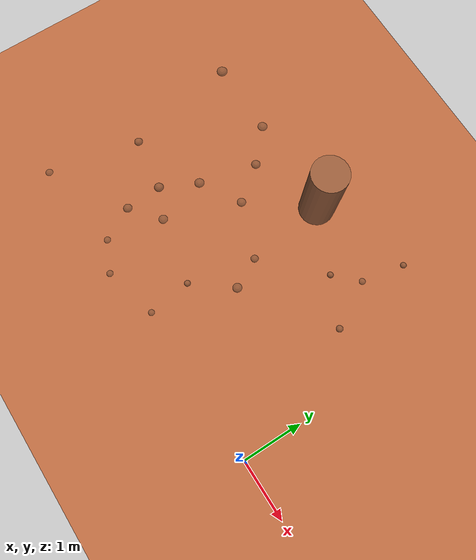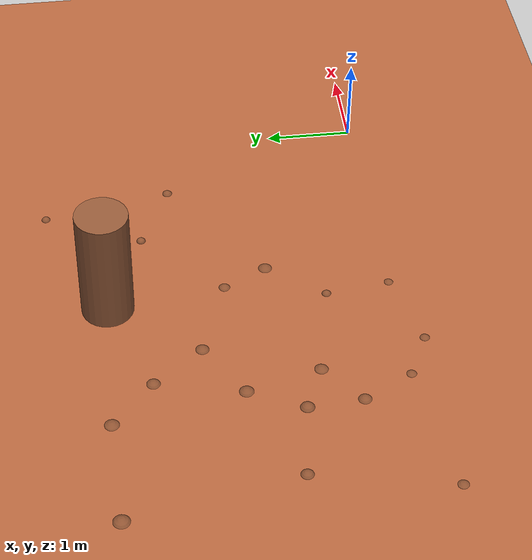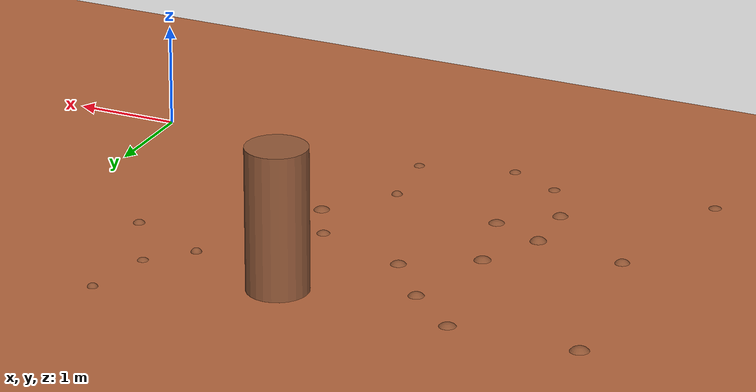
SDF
<sdf version="1.8">
 <world name="rover_world">
  <model name="ground_plane">
   <static>true</static>
   <link name="link">
    <collision name="collision">
     <geometry><plane><normal>0 0 1</normal><size>60 60</size></plane></geometry>
    </collision>
    <visual name="visual">
     <geometry><plane><normal>0 0 1</normal><size>60 60</size></plane></geometry>
     <material><ambient>0.71 0.40 0.24 1</ambient><diffuse>0.71 0.40 0.24 1</diffuse></material>
    </visual>
   </link>
  </model>
  <model name="rock_c9">
   <static>true</static>
   <pose>-2.725 3.162 0.698 0 0 0</pose>
   <link name="link">
    <collision name="collision">
     <geometry><cylinder><radius>0.295</radius><length>1.396</length></cylinder></geometry>
    </collision>
    <visual name="visual">
     <geometry><cylinder><radius>0.295</radius><length>1.396</length></cylinder></geometry>
     <material><ambient>0.58 0.35 0.22 1</ambient><diffuse>0.58 0.35 0.22 1</diffuse></material>
    </visual>
   </link>
  </model>
  <model name="bump_0">
   <static>true</static>
   <pose>-4.134 1.772 -0.076 0 0 0</pose>
   <link name="link">
    <collision name="collision"><geometry><sphere><radius>0.108</radius></sphere></geometry></collision>
    <visual name="visual">
     <geometry><sphere><radius>0.108</radius></sphere></geometry>
     <material><ambient>0.55 0.32 0.19 1</ambient><diffuse>0.55 0.32 0.19 1</diffuse></material>
    </visual>
   </link>
  </model>
  <model name="bump_7">
   <static>true</static>
   <pose>-1.305 3.084 -0.052 0 0 0</pose>
   <link name="link">
    <collision name="collision"><geometry><sphere><radius>0.071</radius></sphere></geometry></collision>
    <visual name="visual">
     <geometry><sphere><radius>0.071</radius></sphere></geometry>
     <material><ambient>0.55 0.32 0.19 1</ambient><diffuse>0.55 0.32 0.19 1</diffuse></material>
    </visual>
   </link>
  </model>
  <model name="bump_28">
   <static>true</static>
   <pose>-2.774 0.702 -0.030 0 0 0</pose>
   <link name="link">
    <collision name="collision"><geometry><sphere><radius>0.058</radius></sphere></geometry></collision>
    <visual name="visual">
     <geometry><sphere><radius>0.058</radius></sphere></geometry>
     <material><ambient>0.55 0.32 0.19 1</ambient><diffuse>0.55 0.32 0.19 1</diffuse></material>
    </visual>
   </link>
  </model>
  <model name="bump_31">
   <static>true</static>
   <pose>-3.471 2.179 -0.074 0 0 0</pose>
   <link name="link">
    <collision name="collision"><geometry><sphere><radius>0.102</radius></sphere></geometry></collision>
    <visual name="visual">
     <geometry><sphere><radius>0.102</radius></sphere></geometry>
     <material><ambient>0.55 0.32 0.19 1</ambient><diffuse>0.55 0.32 0.19 1</diffuse></material>
    </visual>
   </link>
  </model>
  <model name="bump_32">
   <static>true</static>
   <pose>-4.435 3.226 -0.090 0 0 0</pose>
   <link name="link">
    <collision name="collision"><geometry><sphere><radius>0.118</radius></sphere></geometry></collision>
    <visual name="visual">
     <geometry><sphere><radius>0.118</radius></sphere></geometry>
     <material><ambient>0.55 0.32 0.19 1</ambient><diffuse>0.55 0.32 0.19 1</diffuse></material>
    </visual>
   </link>
  </model>
  <model name="bump_36">
   <static>true</static>
   <pose>-5.698 3.209 -0.081 0 0 0</pose>
   <link name="link">
    <collision name="collision"><geometry><sphere><radius>0.119</radius></sphere></geometry></collision>
    <visual name="visual">
     <geometry><sphere><radius>0.119</radius></sphere></geometry>
     <material><ambient>0.55 0.32 0.19 1</ambient><diffuse>0.55 0.32 0.19 1</diffuse></material>
    </visual>
   </link>
  </model>
  <model name="bump_44">
   <static>true</static>
   <pose>-2.673 -0.027 -0.055 0 0 0</pose>
   <link name="link">
    <collision name="collision"><geometry><sphere><radius>0.072</radius></sphere></geometry></collision>
    <visual name="visual">
     <geometry><sphere><radius>0.072</radius></sphere></geometry>
     <material><ambient>0.55 0.32 0.19 1</ambient><diffuse>0.55 0.32 0.19 1</diffuse></material>
    </visual>
   </link>
  </model>
  <model name="bump_45">
   <static>true</static>
   <pose>-1.666 2.713 -0.019 0 0 0</pose>
   <link name="link">
    <collision name="collision"><geometry><sphere><radius>0.054</radius></sphere></geometry></collision>
    <visual name="visual">
     <geometry><sphere><radius>0.054</radius></sphere></geometry>
     <material><ambient>0.55 0.32 0.19 1</ambient><diffuse>0.55 0.32 0.19 1</diffuse></material>
    </visual>
   </link>
  </model>
  <model name="bump_70">
   <static>true</static>
   <pose>-4.387 0.538 -0.065 0 0 0</pose>
   <link name="link">
    <collision name="collision"><geometry><sphere><radius>0.095</radius></sphere></geometry></collision>
    <visual name="visual">
     <geometry><sphere><radius>0.095</radius></sphere></geometry>
     <material><ambient>0.55 0.32 0.19 1</ambient><diffuse>0.55 0.32 0.19 1</diffuse></material>
    </visual>
   </link>
  </model>
  <model name="bump_78">
   <static>true</static>
   <pose>-2.286 1.337 -0.079 0 0 0</pose>
   <link name="link">
    <collision name="collision"><geometry><sphere><radius>0.107</radius></sphere></geometry></collision>
    <visual name="visual">
     <geometry><sphere><radius>0.107</radius></sphere></geometry>
     <material><ambient>0.55 0.32 0.19 1</ambient><diffuse>0.55 0.32 0.19 1</diffuse></material>
    </visual>
   </link>
  </model>
  <model name="bump_92">
   <static>true</static>
   <pose>-2.543 1.834 -0.060 0 0 0</pose>
   <link name="link">
    <collision name="collision"><geometry><sphere><radius>0.084</radius></sphere></geometry></collision>
    <visual name="visual">
     <geometry><sphere><radius>0.084</radius></sphere></geometry>
     <material><ambient>0.55 0.32 0.19 1</ambient><diffuse>0.55 0.32 0.19 1</diffuse></material>
    </visual>
   </link>
  </model>
  <model name="bump_110">
   <static>true</static>
   <pose>-0.871 2.339 -0.038 0 0 0</pose>
   <link name="link">
    <collision name="collision"><geometry><sphere><radius>0.066</radius></sphere></geometry></collision>
    <visual name="visual">
     <geometry><sphere><radius>0.066</radius></sphere></geometry>
     <material><ambient>0.55 0.32 0.19 1</ambient><diffuse>0.55 0.32 0.19 1</diffuse></material>
    </visual>
   </link>
  </model>
  <model name="bump_130">
   <static>true</static>
   <pose>-3.908 0.933 -0.086 0 0 0</pose>
   <link name="link">
    <collision name="collision"><geometry><sphere><radius>0.111</radius></sphere></geometry></collision>
    <visual name="visual">
     <geometry><sphere><radius>0.111</radius></sphere></geometry>
     <material><ambient>0.55 0.32 0.19 1</ambient><diffuse>0.55 0.32 0.19 1</diffuse></material>
    </visual>
   </link>
  </model>
  <model name="bump_142">
   <static>true</static>
   <pose>-1.169 3.800 -0.026 0 0 0</pose>
   <link name="link">
    <collision name="collision"><geometry><sphere><radius>0.055</radius></sphere></geometry></collision>
    <visual name="visual">
     <geometry><sphere><radius>0.055</radius></sphere></geometry>
     <material><ambient>0.55 0.32 0.19 1</ambient><diffuse>0.55 0.32 0.19 1</diffuse></material>
    </visual>
   </link>
  </model>
  <model name="bump_156">
   <static>true</static>
   <pose>-3.577 -0.265 -0.058 0 0 0</pose>
   <link name="link">
    <collision name="collision"><geometry><sphere><radius>0.076</radius></sphere></geometry></collision>
    <visual name="visual">
     <geometry><sphere><radius>0.076</radius></sphere></geometry>
     <material><ambient>0.55 0.32 0.19 1</ambient><diffuse>0.55 0.32 0.19 1</diffuse></material>
    </visual>
   </link>
  </model>
  <model name="bump_178">
   <static>true</static>
   <pose>-4.429 1.161 -0.053 0 0 0</pose>
   <link name="link">
    <collision name="collision"><geometry><sphere><radius>0.093</radius></sphere></geometry></collision>
    <visual name="visual">
     <geometry><sphere><radius>0.093</radius></sphere></geometry>
     <material><ambient>0.55 0.32 0.19 1</ambient><diffuse>0.55 0.32 0.19 1</diffuse></material>
    </visual>
   </link>
  </model>
  <model name="bump_198">
   <static>true</static>
   <pose>-4.089 -0.020 -0.069 0 0 0</pose>
   <link name="link">
    <collision name="collision"><geometry><sphere><radius>0.085</radius></sphere></geometry></collision>
    <visual name="visual">
     <geometry><sphere><radius>0.085</radius></sphere></geometry>
     <material><ambient>0.55 0.32 0.19 1</ambient><diffuse>0.55 0.32 0.19 1</diffuse></material>
    </visual>
   </link>
  </model>
  <model name="bump_206">
   <static>true</static>
   <pose>-5.322 1.294 -0.054 0 0 0</pose>
   <link name="link">
    <collision name="collision"><geometry><sphere><radius>0.086</radius></sphere></geometry></collision>
    <visual name="visual">
     <geometry><sphere><radius>0.086</radius></sphere></geometry>
     <material><ambient>0.55 0.32 0.19 1</ambient><diffuse>0.55 0.32 0.19 1</diffuse></material>
    </visual>
   </link>
  </model>
  <model name="bump_231">
   <static>true</static>
   <pose>-3.911 2.749 -0.066 0 0 0</pose>
   <link name="link">
    <collision name="collision"><geometry><sphere><radius>0.097</radius></sphere></geometry></collision>
    <visual name="visual">
     <geometry><sphere><radius>0.097</radius></sphere></geometry>
     <material><ambient>0.55 0.32 0.19 1</ambient><diffuse>0.55 0.32 0.19 1</diffuse></material>
    </visual>
   </link>
  </model>
  <model name="bump_248">
   <static>true</static>
   <pose>-5.637 -0.252 -0.079 0 0 0</pose>
   <link name="link">
    <collision name="collision"><geometry><sphere><radius>0.096</radius></sphere></geometry></collision>
    <visual name="visual">
     <geometry><sphere><radius>0.096</radius></sphere></geometry>
     <material><ambient>0.55 0.32 0.19 1</ambient><diffuse>0.55 0.32 0.19 1</diffuse></material>
    </visual>
   </link>
  </model>
 </world>
</sdf>
